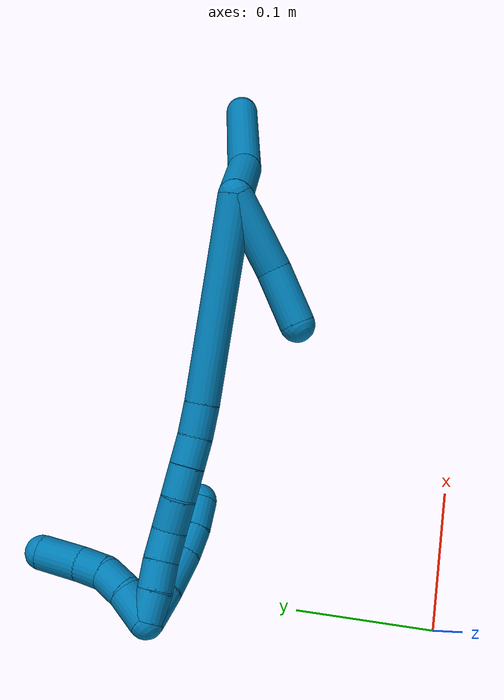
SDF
<sdf version="1.7">
 <world name="default">
  <model name="9">
   <static>0</static>
   <link name="9">
    <collision name="collision-cylinder-e_1_2_8">
     <pose>-0.011728 -0.013944 -0.019216 2.51385 -0.458809 -1.24724</pose>
     <geometry><cylinder><radius>0.0125</radius><length>0.052961</length></cylinder></geometry>
     <surface>
      <friction><ode><mu>1.16</mu><mu2>1.16</mu2><slip1>0</slip1><slip2>0</slip2></ode></friction>
      <contact><ode><kp>1e+06</kp><kd>1</kd><max_vel>0</max_vel><min_depth>0.001</min_depth></ode></contact>
     </surface>
    </collision>
    <visual name="visual-cylinder-e_1_2_8">
     <pose>-0.011728 -0.013944 -0.019216 2.51385 -0.458809 -1.24724</pose>
     <geometry><cylinder><radius>0.0125</radius><length>0.052961</length></cylinder></geometry>
     <material><ambient>0 0.490196 0.709804 1</ambient></material>
    </visual>
    <collision name="collision-cylinder-e_2_8_6">
     <pose>-0.038577 -0.049199 -0.079314 2.66108 -0.316933 -1.15599</pose>
     <geometry><cylinder><radius>0.0125</radius><length>0.097039</length></cylinder></geometry>
     <surface>
      <friction><ode><mu>1.16</mu><mu2>1.16</mu2><slip1>0</slip1><slip2>0</slip2></ode></friction>
      <contact><ode><kp>1e+06</kp><kd>1</kd><max_vel>0</max_vel><min_depth>0.001</min_depth></ode></contact>
     </surface>
    </collision>
    <visual name="visual-cylinder-e_2_8_6">
     <pose>-0.038577 -0.049199 -0.079314 2.66108 -0.316933 -1.15599</pose>
     <geometry><cylinder><radius>0.0125</radius><length>0.097039</length></cylinder></geometry>
     <material><ambient>0 0.490196 0.709804 1</ambient></material>
    </visual>
    <collision name="collision-cylinder-e_1_2_9">
     <pose>-0.016898 -0.001059 0.023901 0.044258 -0.614944 -0.014056</pose>
     <geometry><cylinder><radius>0.0125</radius><length>0.058581</length></cylinder></geometry>
     <surface>
      <friction><ode><mu>1.16</mu><mu2>1.16</mu2><slip1>0</slip1><slip2>0</slip2></ode></friction>
      <contact><ode><kp>1e+06</kp><kd>1</kd><max_vel>0</max_vel><min_depth>0.001</min_depth></ode></contact>
     </surface>
    </collision>
    <visual name="visual-cylinder-e_1_2_9">
     <pose>-0.016898 -0.001059 0.023901 0.044258 -0.614944 -0.014056</pose>
     <geometry><cylinder><radius>0.0125</radius><length>0.058581</length></cylinder></geometry>
     <material><ambient>0 0.490196 0.709804 1</ambient></material>
    </visual>
    <collision name="collision-cylinder-e_2_9_5">
     <pose>-0.043263 -0.000579 0.066157 -0.083623 -0.474786 0.020244</pose>
     <geometry><cylinder><radius>0.0125</radius><length>0.041419</length></cylinder></geometry>
     <surface>
      <friction><ode><mu>1.16</mu><mu2>1.16</mu2><slip1>0</slip1><slip2>0</slip2></ode></friction>
      <contact><ode><kp>1e+06</kp><kd>1</kd><max_vel>0</max_vel><min_depth>0.001</min_depth></ode></contact>
     </surface>
    </collision>
    <visual name="visual-cylinder-e_2_9_5">
     <pose>-0.043263 -0.000579 0.066157 -0.083623 -0.474786 0.020244</pose>
     <geometry><cylinder><radius>0.0125</radius><length>0.041419</length></cylinder></geometry>
     <material><ambient>0 0.490196 0.709804 1</ambient></material>
    </visual>
    <collision name="collision-cylinder-e_1_2_10">
     <pose>-0.040399 0.041134 0.045332 -0.736894 -0.583362 0.230805</pose>
     <geometry><cylinder><radius>0.0125</radius><length>0.146685</length></cylinder></geometry>
     <surface>
      <friction><ode><mu>1.16</mu><mu2>1.16</mu2><slip1>0</slip1><slip2>0</slip2></ode></friction>
      <contact><ode><kp>1e+06</kp><kd>1</kd><max_vel>0</max_vel><min_depth>0.001</min_depth></ode></contact>
     </surface>
    </collision>
    <visual name="visual-cylinder-e_1_2_10">
     <pose>-0.040399 0.041134 0.045332 -0.736894 -0.583362 0.230805</pose>
     <geometry><cylinder><radius>0.0125</radius><length>0.146685</length></cylinder></geometry>
     <material><ambient>0 0.490196 0.709804 1</ambient></material>
    </visual>
    <collision name="collision-cylinder-e_2_10_11">
     <pose>-0.0868 0.089439 0.097915 -0.779755 -0.531882 0.222931</pose>
     <geometry><cylinder><radius>0.0125</radius><length>0.023666</length></cylinder></geometry>
     <surface>
      <friction><ode><mu>1.16</mu><mu2>1.16</mu2><slip1>0</slip1><slip2>0</slip2></ode></friction>
      <contact><ode><kp>1e+06</kp><kd>1</kd><max_vel>0</max_vel><min_depth>0.001</min_depth></ode></contact>
     </surface>
    </collision>
    <visual name="visual-cylinder-e_2_10_11">
     <pose>-0.0868 0.089439 0.097915 -0.779755 -0.531882 0.222931</pose>
     <geometry><cylinder><radius>0.0125</radius><length>0.023666</length></cylinder></geometry>
     <material><ambient>0 0.490196 0.709804 1</ambient></material>
    </visual>
    <collision name="collision-cylinder-e_3_11_12">
     <pose>-0.097335 0.103626 0.111547 -0.832838 -0.445962 0.199909</pose>
     <geometry><cylinder><radius>0.0125</radius><length>0.021024</length></cylinder></geometry>
     <surface>
      <friction><ode><mu>1.16</mu><mu2>1.16</mu2><slip1>0</slip1><slip2>0</slip2></ode></friction>
      <contact><ode><kp>1e+06</kp><kd>1</kd><max_vel>0</max_vel><min_depth>0.001</min_depth></ode></contact>
     </surface>
    </collision>
    <visual name="visual-cylinder-e_3_11_12">
     <pose>-0.097335 0.103626 0.111547 -0.832838 -0.445962 0.199909</pose>
     <geometry><cylinder><radius>0.0125</radius><length>0.021024</length></cylinder></geometry>
     <material><ambient>0 0.490196 0.709804 1</ambient></material>
    </visual>
    <collision name="collision-cylinder-e_4_12_13">
     <pose>-0.107176 0.118196 0.124717 -0.838644 -0.481485 0.218004</pose>
     <geometry><cylinder><radius>0.0125</radius><length>0.022917</length></cylinder></geometry>
     <surface>
      <friction><ode><mu>1.16</mu><mu2>1.16</mu2><slip1>0</slip1><slip2>0</slip2></ode></friction>
      <contact><ode><kp>1e+06</kp><kd>1</kd><max_vel>0</max_vel><min_depth>0.001</min_depth></ode></contact>
     </surface>
    </collision>
    <visual name="visual-cylinder-e_4_12_13">
     <pose>-0.107176 0.118196 0.124717 -0.838644 -0.481485 0.218004</pose>
     <geometry><cylinder><radius>0.0125</radius><length>0.022917</length></cylinder></geometry>
     <material><ambient>0 0.490196 0.709804 1</ambient></material>
    </visual>
    <collision name="collision-cylinder-e_5_13_14">
     <pose>-0.119133 0.133179 0.137597 -0.884053 -0.60547 0.293506</pose>
     <geometry><cylinder><radius>0.0125</radius><length>0.023369</length></cylinder></geometry>
     <surface>
      <friction><ode><mu>1.16</mu><mu2>1.16</mu2><slip1>0</slip1><slip2>0</slip2></ode></friction>
      <contact><ode><kp>1e+06</kp><kd>1</kd><max_vel>0</max_vel><min_depth>0.001</min_depth></ode></contact>
     </surface>
    </collision>
    <visual name="visual-cylinder-e_5_13_14">
     <pose>-0.119133 0.133179 0.137597 -0.884053 -0.60547 0.293506</pose>
     <geometry><cylinder><radius>0.0125</radius><length>0.023369</length></cylinder></geometry>
     <material><ambient>0 0.490196 0.709804 1</ambient></material>
    </visual>
    <collision name="collision-cylinder-e_6_14_15">
     <pose>-0.129382 0.147864 0.150639 -0.806817 -0.343988 0.148014</pose>
     <geometry><cylinder><radius>0.0125</radius><length>0.021344</length></cylinder></geometry>
     <surface>
      <friction><ode><mu>1.16</mu><mu2>1.16</mu2><slip1>0</slip1><slip2>0</slip2></ode></friction>
      <contact><ode><kp>1e+06</kp><kd>1</kd><max_vel>0</max_vel><min_depth>0.001</min_depth></ode></contact>
     </surface>
    </collision>
    <visual name="visual-cylinder-e_6_14_15">
     <pose>-0.129382 0.147864 0.150639 -0.806817 -0.343988 0.148014</pose>
     <geometry><cylinder><radius>0.0125</radius><length>0.021344</length></cylinder></geometry>
     <material><ambient>0 0.490196 0.709804 1</ambient></material>
    </visual>
    <collision name="collision-cylinder-e_7_15_16">
     <pose>-0.136276 0.161406 0.164738 -0.721438 -0.333208 0.1267</pose>
     <geometry><cylinder><radius>0.0125</radius><length>0.020149</length></cylinder></geometry>
     <surface>
      <friction><ode><mu>1.16</mu><mu2>1.16</mu2><slip1>0</slip1><slip2>0</slip2></ode></friction>
      <contact><ode><kp>1e+06</kp><kd>1</kd><max_vel>0</max_vel><min_depth>0.001</min_depth></ode></contact>
     </surface>
    </collision>
    <visual name="visual-cylinder-e_7_15_16">
     <pose>-0.136276 0.161406 0.164738 -0.721438 -0.333208 0.1267</pose>
     <geometry><cylinder><radius>0.0125</radius><length>0.020149</length></cylinder></geometry>
     <material><ambient>0 0.490196 0.709804 1</ambient></material>
    </visual>
    <collision name="collision-cylinder-e_8_16_1">
     <pose>-0.14333 0.174807 0.178513 -0.820792 -0.368923 0.16201</pose>
     <geometry><cylinder><radius>0.0125</radius><length>0.020845</length></cylinder></geometry>
     <surface>
      <friction><ode><mu>1.16</mu><mu2>1.16</mu2><slip1>0</slip1><slip2>0</slip2></ode></friction>
      <contact><ode><kp>1e+06</kp><kd>1</kd><max_vel>0</max_vel><min_depth>0.001</min_depth></ode></contact>
     </surface>
    </collision>
    <visual name="visual-cylinder-e_8_16_1">
     <pose>-0.14333 0.174807 0.178513 -0.820792 -0.368923 0.16201</pose>
     <geometry><cylinder><radius>0.0125</radius><length>0.020845</length></cylinder></geometry>
     <material><ambient>0 0.490196 0.709804 1</ambient></material>
    </visual>
    <collision name="collision-cylinder-e_1_1_17">
     <pose>-0.149119 0.171173 0.177771 2.17184 -0.154602 -0.291957</pose>
     <geometry><cylinder><radius>0.0125</radius><length>0.026376</length></cylinder></geometry>
     <surface>
      <friction><ode><mu>1.16</mu><mu2>1.16</mu2><slip1>0</slip1><slip2>0</slip2></ode></friction>
      <contact><ode><kp>1e+06</kp><kd>1</kd><max_vel>0</max_vel><min_depth>0.001</min_depth></ode></contact>
     </surface>
    </collision>
    <visual name="visual-cylinder-e_1_1_17">
     <pose>-0.149119 0.171173 0.177771 2.17184 -0.154602 -0.291957</pose>
     <geometry><cylinder><radius>0.0125</radius><length>0.026376</length></cylinder></geometry>
     <material><ambient>0 0.490196 0.709804 1</ambient></material>
    </visual>
    <collision name="collision-cylinder-e_2_17_18">
     <pose>-0.153858 0.148818 0.161153 2.24355 -0.180465 -0.371224</pose>
     <geometry><cylinder><radius>0.0125</radius><length>0.030175</length></cylinder></geometry>
     <surface>
      <friction><ode><mu>1.16</mu><mu2>1.16</mu2><slip1>0</slip1><slip2>0</slip2></ode></friction>
      <contact><ode><kp>1e+06</kp><kd>1</kd><max_vel>0</max_vel><min_depth>0.001</min_depth></ode></contact>
     </surface>
    </collision>
    <visual name="visual-cylinder-e_2_17_18">
     <pose>-0.153858 0.148818 0.161153 2.24355 -0.180465 -0.371224</pose>
     <geometry><cylinder><radius>0.0125</radius><length>0.030175</length></cylinder></geometry>
     <material><ambient>0 0.490196 0.709804 1</ambient></material>
    </visual>
    <collision name="collision-cylinder-e_3_18_19">
     <pose>-0.157217 0.129434 0.144798 2.3112 -0.061727 -0.139842</pose>
     <geometry><cylinder><radius>0.0125</radius><length>0.021107</length></cylinder></geometry>
     <surface>
      <friction><ode><mu>1.16</mu><mu2>1.16</mu2><slip1>0</slip1><slip2>0</slip2></ode></friction>
      <contact><ode><kp>1e+06</kp><kd>1</kd><max_vel>0</max_vel><min_depth>0.001</min_depth></ode></contact>
     </surface>
    </collision>
    <visual name="visual-cylinder-e_3_18_19">
     <pose>-0.157217 0.129434 0.144798 2.3112 -0.061727 -0.139842</pose>
     <geometry><cylinder><radius>0.0125</radius><length>0.021107</length></cylinder></geometry>
     <material><ambient>0 0.490196 0.709804 1</ambient></material>
    </visual>
    <collision name="collision-cylinder-e_4_19_4">
     <pose>-0.157431 0.114357 0.129248 2.42868 0.03917 0.10511</pose>
     <geometry><cylinder><radius>0.0125</radius><length>0.022342</length></cylinder></geometry>
     <surface>
      <friction><ode><mu>1.16</mu><mu2>1.16</mu2><slip1>0</slip1><slip2>0</slip2></ode></friction>
      <contact><ode><kp>1e+06</kp><kd>1</kd><max_vel>0</max_vel><min_depth>0.001</min_depth></ode></contact>
     </surface>
    </collision>
    <visual name="visual-cylinder-e_4_19_4">
     <pose>-0.157431 0.114357 0.129248 2.42868 0.03917 0.10511</pose>
     <geometry><cylinder><radius>0.0125</radius><length>0.022342</length></cylinder></geometry>
     <material><ambient>0 0.490196 0.709804 1</ambient></material>
    </visual>
    <collision name="collision-cylinder-e_1_1_20">
     <pose>-0.146484 0.183742 0.172566 -2.99772 0.047549 -0.63745</pose>
     <geometry><cylinder><radius>0.0125</radius><length>0.025439</length></cylinder></geometry>
     <surface>
      <friction><ode><mu>1.16</mu><mu2>1.16</mu2><slip1>0</slip1><slip2>0</slip2></ode></friction>
      <contact><ode><kp>1e+06</kp><kd>1</kd><max_vel>0</max_vel><min_depth>0.001</min_depth></ode></contact>
     </surface>
    </collision>
    <visual name="visual-cylinder-e_1_1_20">
     <pose>-0.146484 0.183742 0.172566 -2.99772 0.047549 -0.63745</pose>
     <geometry><cylinder><radius>0.0125</radius><length>0.025439</length></cylinder></geometry>
     <material><ambient>0 0.490196 0.709804 1</ambient></material>
    </visual>
    <collision name="collision-cylinder-e_2_20_21">
     <pose>-0.147474 0.188552 0.149679 -2.8595 -0.147459 0.959374</pose>
     <geometry><cylinder><radius>0.0125</radius><length>0.02171</length></cylinder></geometry>
     <surface>
      <friction><ode><mu>1.16</mu><mu2>1.16</mu2><slip1>0</slip1><slip2>0</slip2></ode></friction>
      <contact><ode><kp>1e+06</kp><kd>1</kd><max_vel>0</max_vel><min_depth>0.001</min_depth></ode></contact>
     </surface>
    </collision>
    <visual name="visual-cylinder-e_2_20_21">
     <pose>-0.147474 0.188552 0.149679 -2.8595 -0.147459 0.959374</pose>
     <geometry><cylinder><radius>0.0125</radius><length>0.02171</length></cylinder></geometry>
     <material><ambient>0 0.490196 0.709804 1</ambient></material>
    </visual>
    <collision name="collision-cylinder-e_3_21_22">
     <pose>-0.151223 0.197471 0.131091 -2.51983 -0.208548 0.629767</pose>
     <geometry><cylinder><radius>0.0125</radius><length>0.02081</length></cylinder></geometry>
     <surface>
      <friction><ode><mu>1.16</mu><mu2>1.16</mu2><slip1>0</slip1><slip2>0</slip2></ode></friction>
      <contact><ode><kp>1e+06</kp><kd>1</kd><max_vel>0</max_vel><min_depth>0.001</min_depth></ode></contact>
     </surface>
    </collision>
    <visual name="visual-cylinder-e_3_21_22">
     <pose>-0.151223 0.197471 0.131091 -2.51983 -0.208548 0.629767</pose>
     <geometry><cylinder><radius>0.0125</radius><length>0.02081</length></cylinder></geometry>
     <material><ambient>0 0.490196 0.709804 1</ambient></material>
    </visual>
    <collision name="collision-cylinder-e_4_22_3">
     <pose>-0.154913 0.213839 0.110762 -2.42786 -0.095999 0.256273</pose>
     <geometry><cylinder><radius>0.0125</radius><length>0.03204</length></cylinder></geometry>
     <surface>
      <friction><ode><mu>1.16</mu><mu2>1.16</mu2><slip1>0</slip1><slip2>0</slip2></ode></friction>
      <contact><ode><kp>1e+06</kp><kd>1</kd><max_vel>0</max_vel><min_depth>0.001</min_depth></ode></contact>
     </surface>
    </collision>
    <visual name="visual-cylinder-e_4_22_3">
     <pose>-0.154913 0.213839 0.110762 -2.42786 -0.095999 0.256273</pose>
     <geometry><cylinder><radius>0.0125</radius><length>0.03204</length></cylinder></geometry>
     <material><ambient>0 0.490196 0.709804 1</ambient></material>
    </visual>
    <collision name="collision-sphere-3">
     <pose>-0.156449 0.224279 0.098708 0 -0 0</pose>
     <geometry><sphere><radius>0.0125</radius></sphere></geometry>
     <surface>
      <friction><ode><mu>1.16</mu><mu2>1.16</mu2><slip1>0</slip1><slip2>0</slip2></ode></friction>
      <contact><ode><kp>1e+06</kp><kd>1</kd><max_vel>0</max_vel><min_depth>0.001</min_depth></ode></contact>
     </surface>
    </collision>
    <visual name="visual-sphere-3">
     <pose>-0.156449 0.224279 0.098708 0 -0 0</pose>
     <geometry><sphere><radius>0.0125</radius></sphere></geometry>
     <material><ambient>0 0.490196 0.709804 1</ambient></material>
    </visual>
    <collision name="collision-sphere-22">
     <pose>-0.153378 0.2034 0.122817 0 -0 0</pose>
     <geometry><sphere><radius>0.0125</radius></sphere></geometry>
     <surface>
      <friction><ode><mu>1.16</mu><mu2>1.16</mu2><slip1>0</slip1><slip2>0</slip2></ode></friction>
      <contact><ode><kp>1e+06</kp><kd>1</kd><max_vel>0</max_vel><min_depth>0.001</min_depth></ode></contact>
     </surface>
    </collision>
    <visual name="visual-sphere-22">
     <pose>-0.153378 0.2034 0.122817 0 -0 0</pose>
     <geometry><sphere><radius>0.0125</radius></sphere></geometry>
     <material><ambient>0 0.490196 0.709804 1</ambient></material>
    </visual>
    <collision name="collision-sphere-21">
     <pose>-0.149069 0.191541 0.139366 0 -0 0</pose>
     <geometry><sphere><radius>0.0125</radius></sphere></geometry>
     <surface>
      <friction><ode><mu>1.16</mu><mu2>1.16</mu2><slip1>0</slip1><slip2>0</slip2></ode></friction>
      <contact><ode><kp>1e+06</kp><kd>1</kd><max_vel>0</max_vel><min_depth>0.001</min_depth></ode></contact>
     </surface>
    </collision>
    <visual name="visual-sphere-21">
     <pose>-0.149069 0.191541 0.139366 0 -0 0</pose>
     <geometry><sphere><radius>0.0125</radius></sphere></geometry>
     <material><ambient>0 0.490196 0.709804 1</ambient></material>
    </visual>
    <collision name="collision-sphere-20">
     <pose>-0.145879 0.185564 0.159992 0 -0 0</pose>
     <geometry><sphere><radius>0.0125</radius></sphere></geometry>
     <surface>
      <friction><ode><mu>1.16</mu><mu2>1.16</mu2><slip1>0</slip1><slip2>0</slip2></ode></friction>
      <contact><ode><kp>1e+06</kp><kd>1</kd><max_vel>0</max_vel><min_depth>0.001</min_depth></ode></contact>
     </surface>
    </collision>
    <visual name="visual-sphere-20">
     <pose>-0.145879 0.185564 0.159992 0 -0 0</pose>
     <geometry><sphere><radius>0.0125</radius></sphere></geometry>
     <material><ambient>0 0.490196 0.709804 1</ambient></material>
    </visual>
    <collision name="collision-sphere-4">
     <pose>-0.156993 0.107057 0.120805 0 -0 0</pose>
     <geometry><sphere><radius>0.0125</radius></sphere></geometry>
     <surface>
      <friction><ode><mu>1.16</mu><mu2>1.16</mu2><slip1>0</slip1><slip2>0</slip2></ode></friction>
      <contact><ode><kp>1e+06</kp><kd>1</kd><max_vel>0</max_vel><min_depth>0.001</min_depth></ode></contact>
     </surface>
    </collision>
    <visual name="visual-sphere-4">
     <pose>-0.156993 0.107057 0.120805 0 -0 0</pose>
     <geometry><sphere><radius>0.0125</radius></sphere></geometry>
     <material><ambient>0 0.490196 0.709804 1</ambient></material>
    </visual>
    <collision name="collision-sphere-10">
     <pose>-0.080799 0.082269 0.090663 0 -0 0</pose>
     <geometry><sphere><radius>0.0125</radius></sphere></geometry>
     <surface>
      <friction><ode><mu>1.16</mu><mu2>1.16</mu2><slip1>0</slip1><slip2>0</slip2></ode></friction>
      <contact><ode><kp>1e+06</kp><kd>1</kd><max_vel>0</max_vel><min_depth>0.001</min_depth></ode></contact>
     </surface>
    </collision>
    <visual name="visual-sphere-10">
     <pose>-0.080799 0.082269 0.090663 0 -0 0</pose>
     <geometry><sphere><radius>0.0125</radius></sphere></geometry>
     <material><ambient>0 0.490196 0.709804 1</ambient></material>
    </visual>
    <collision name="collision-sphere-5">
     <pose>-0.052731 0.00096 0.084511 0 -0 0</pose>
     <geometry><sphere><radius>0.0125</radius></sphere></geometry>
     <surface>
      <friction><ode><mu>1.16</mu><mu2>1.16</mu2><slip1>0</slip1><slip2>0</slip2></ode></friction>
      <contact><ode><kp>1e+06</kp><kd>1</kd><max_vel>0</max_vel><min_depth>0.001</min_depth></ode></contact>
     </surface>
    </collision>
    <visual name="visual-sphere-5">
     <pose>-0.052731 0.00096 0.084511 0 -0 0</pose>
     <geometry><sphere><radius>0.0125</radius></sphere></geometry>
     <material><ambient>0 0.490196 0.709804 1</ambient></material>
    </visual>
    <collision name="collision-sphere-6">
     <pose>-0.053698 -0.070509 -0.120196 0 -0 0</pose>
     <geometry><sphere><radius>0.0125</radius></sphere></geometry>
     <surface>
      <friction><ode><mu>1.16</mu><mu2>1.16</mu2><slip1>0</slip1><slip2>0</slip2></ode></friction>
      <contact><ode><kp>1e+06</kp><kd>1</kd><max_vel>0</max_vel><min_depth>0.001</min_depth></ode></contact>
     </surface>
    </collision>
    <visual name="visual-sphere-6">
     <pose>-0.053698 -0.070509 -0.120196 0 -0 0</pose>
     <geometry><sphere><radius>0.0125</radius></sphere></geometry>
     <material><ambient>0 0.490196 0.709804 1</ambient></material>
    </visual>
    <collision name="collision-sphere-9">
     <pose>-0.033796 -0.002117 0.047802 0 -0 0</pose>
     <geometry><sphere><radius>0.0125</radius></sphere></geometry>
     <surface>
      <friction><ode><mu>1.16</mu><mu2>1.16</mu2><slip1>0</slip1><slip2>0</slip2></ode></friction>
      <contact><ode><kp>1e+06</kp><kd>1</kd><max_vel>0</max_vel><min_depth>0.001</min_depth></ode></contact>
     </surface>
    </collision>
    <visual name="visual-sphere-9">
     <pose>-0.033796 -0.002117 0.047802 0 -0 0</pose>
     <geometry><sphere><radius>0.0125</radius></sphere></geometry>
     <material><ambient>0 0.490196 0.709804 1</ambient></material>
    </visual>
    <collision name="collision-sphere-2">
     <geometry><sphere><radius>0.0125</radius></sphere></geometry>
     <surface>
      <friction><ode><mu>1.16</mu><mu2>1.16</mu2><slip1>0</slip1><slip2>0</slip2></ode></friction>
      <contact><ode><kp>1e+06</kp><kd>1</kd><max_vel>0</max_vel><min_depth>0.001</min_depth></ode></contact>
     </surface>
    </collision>
    <visual name="visual-sphere-2">
     <geometry><sphere><radius>0.0125</radius></sphere></geometry>
     <material><ambient>0 0.490196 0.709804 1</ambient></material>
    </visual>
    <collision name="collision-sphere-19">
     <pose>-0.157868 0.121658 0.137692 0 -0 0</pose>
     <geometry><sphere><radius>0.0125</radius></sphere></geometry>
     <surface>
      <friction><ode><mu>1.16</mu><mu2>1.16</mu2><slip1>0</slip1><slip2>0</slip2></ode></friction>
      <contact><ode><kp>1e+06</kp><kd>1</kd><max_vel>0</max_vel><min_depth>0.001</min_depth></ode></contact>
     </surface>
    </collision>
    <visual name="visual-sphere-19">
     <pose>-0.157868 0.121658 0.137692 0 -0 0</pose>
     <geometry><sphere><radius>0.0125</radius></sphere></geometry>
     <material><ambient>0 0.490196 0.709804 1</ambient></material>
    </visual>
    <collision name="collision-sphere-8">
     <pose>-0.023455 -0.027888 -0.038431 0 -0 0</pose>
     <geometry><sphere><radius>0.0125</radius></sphere></geometry>
     <surface>
      <friction><ode><mu>1.16</mu><mu2>1.16</mu2><slip1>0</slip1><slip2>0</slip2></ode></friction>
      <contact><ode><kp>1e+06</kp><kd>1</kd><max_vel>0</max_vel><min_depth>0.001</min_depth></ode></contact>
     </surface>
    </collision>
    <visual name="visual-sphere-8">
     <pose>-0.023455 -0.027888 -0.038431 0 -0 0</pose>
     <geometry><sphere><radius>0.0125</radius></sphere></geometry>
     <material><ambient>0 0.490196 0.709804 1</ambient></material>
    </visual>
    <collision name="collision-sphere-11">
     <pose>-0.092801 0.09661 0.105167 0 -0 0</pose>
     <geometry><sphere><radius>0.0125</radius></sphere></geometry>
     <surface>
      <friction><ode><mu>1.16</mu><mu2>1.16</mu2><slip1>0</slip1><slip2>0</slip2></ode></friction>
      <contact><ode><kp>1e+06</kp><kd>1</kd><max_vel>0</max_vel><min_depth>0.001</min_depth></ode></contact>
     </surface>
    </collision>
    <visual name="visual-sphere-11">
     <pose>-0.092801 0.09661 0.105167 0 -0 0</pose>
     <geometry><sphere><radius>0.0125</radius></sphere></geometry>
     <material><ambient>0 0.490196 0.709804 1</ambient></material>
    </visual>
    <collision name="collision-sphere-12">
     <pose>-0.101869 0.110643 0.117928 0 -0 0</pose>
     <geometry><sphere><radius>0.0125</radius></sphere></geometry>
     <surface>
      <friction><ode><mu>1.16</mu><mu2>1.16</mu2><slip1>0</slip1><slip2>0</slip2></ode></friction>
      <contact><ode><kp>1e+06</kp><kd>1</kd><max_vel>0</max_vel><min_depth>0.001</min_depth></ode></contact>
     </surface>
    </collision>
    <visual name="visual-sphere-12">
     <pose>-0.101869 0.110643 0.117928 0 -0 0</pose>
     <geometry><sphere><radius>0.0125</radius></sphere></geometry>
     <material><ambient>0 0.490196 0.709804 1</ambient></material>
    </visual>
    <collision name="collision-sphere-13">
     <pose>-0.112482 0.12575 0.131506 0 -0 0</pose>
     <geometry><sphere><radius>0.0125</radius></sphere></geometry>
     <surface>
      <friction><ode><mu>1.16</mu><mu2>1.16</mu2><slip1>0</slip1><slip2>0</slip2></ode></friction>
      <contact><ode><kp>1e+06</kp><kd>1</kd><max_vel>0</max_vel><min_depth>0.001</min_depth></ode></contact>
     </surface>
    </collision>
    <visual name="visual-sphere-13">
     <pose>-0.112482 0.12575 0.131506 0 -0 0</pose>
     <geometry><sphere><radius>0.0125</radius></sphere></geometry>
     <material><ambient>0 0.490196 0.709804 1</ambient></material>
    </visual>
    <collision name="collision-sphere-14">
     <pose>-0.125783 0.140609 0.143689 0 -0 0</pose>
     <geometry><sphere><radius>0.0125</radius></sphere></geometry>
     <surface>
      <friction><ode><mu>1.16</mu><mu2>1.16</mu2><slip1>0</slip1><slip2>0</slip2></ode></friction>
      <contact><ode><kp>1e+06</kp><kd>1</kd><max_vel>0</max_vel><min_depth>0.001</min_depth></ode></contact>
     </surface>
    </collision>
    <visual name="visual-sphere-14">
     <pose>-0.125783 0.140609 0.143689 0 -0 0</pose>
     <geometry><sphere><radius>0.0125</radius></sphere></geometry>
     <material><ambient>0 0.490196 0.709804 1</ambient></material>
    </visual>
    <collision name="collision-sphere-15">
     <pose>-0.132981 0.155118 0.157589 0 -0 0</pose>
     <geometry><sphere><radius>0.0125</radius></sphere></geometry>
     <surface>
      <friction><ode><mu>1.16</mu><mu2>1.16</mu2><slip1>0</slip1><slip2>0</slip2></ode></friction>
      <contact><ode><kp>1e+06</kp><kd>1</kd><max_vel>0</max_vel><min_depth>0.001</min_depth></ode></contact>
     </surface>
    </collision>
    <visual name="visual-sphere-15">
     <pose>-0.132981 0.155118 0.157589 0 -0 0</pose>
     <geometry><sphere><radius>0.0125</radius></sphere></geometry>
     <material><ambient>0 0.490196 0.709804 1</ambient></material>
    </visual>
    <collision name="collision-sphere-16">
     <pose>-0.139571 0.167694 0.171887 0 -0 0</pose>
     <geometry><sphere><radius>0.0125</radius></sphere></geometry>
     <surface>
      <friction><ode><mu>1.16</mu><mu2>1.16</mu2><slip1>0</slip1><slip2>0</slip2></ode></friction>
      <contact><ode><kp>1e+06</kp><kd>1</kd><max_vel>0</max_vel><min_depth>0.001</min_depth></ode></contact>
     </surface>
    </collision>
    <visual name="visual-sphere-16">
     <pose>-0.139571 0.167694 0.171887 0 -0 0</pose>
     <geometry><sphere><radius>0.0125</radius></sphere></geometry>
     <material><ambient>0 0.490196 0.709804 1</ambient></material>
    </visual>
    <collision name="collision-sphere-1">
     <pose>-0.147088 0.18192 0.18514 0 -0 0</pose>
     <geometry><sphere><radius>0.0125</radius></sphere></geometry>
     <surface>
      <friction><ode><mu>1.16</mu><mu2>1.16</mu2><slip1>0</slip1><slip2>0</slip2></ode></friction>
      <contact><ode><kp>1e+06</kp><kd>1</kd><max_vel>0</max_vel><min_depth>0.001</min_depth></ode></contact>
     </surface>
    </collision>
    <visual name="visual-sphere-1">
     <pose>-0.147088 0.18192 0.18514 0 -0 0</pose>
     <geometry><sphere><radius>0.0125</radius></sphere></geometry>
     <material><ambient>0 0.490196 0.709804 1</ambient></material>
    </visual>
    <collision name="collision-sphere-18">
     <pose>-0.156566 0.137209 0.151904 0 -0 0</pose>
     <geometry><sphere><radius>0.0125</radius></sphere></geometry>
     <surface>
      <friction><ode><mu>1.16</mu><mu2>1.16</mu2><slip1>0</slip1><slip2>0</slip2></ode></friction>
      <contact><ode><kp>1e+06</kp><kd>1</kd><max_vel>0</max_vel><min_depth>0.001</min_depth></ode></contact>
     </surface>
    </collision>
    <visual name="visual-sphere-18">
     <pose>-0.156566 0.137209 0.151904 0 -0 0</pose>
     <geometry><sphere><radius>0.0125</radius></sphere></geometry>
     <material><ambient>0 0.490196 0.709804 1</ambient></material>
    </visual>
    <collision name="collision-sphere-17">
     <pose>-0.15115 0.160426 0.170402 0 -0 0</pose>
     <geometry><sphere><radius>0.0125</radius></sphere></geometry>
     <surface>
      <friction><ode><mu>1.16</mu><mu2>1.16</mu2><slip1>0</slip1><slip2>0</slip2></ode></friction>
      <contact><ode><kp>1e+06</kp><kd>1</kd><max_vel>0</max_vel><min_depth>0.001</min_depth></ode></contact>
     </surface>
    </collision>
    <visual name="visual-sphere-17">
     <pose>-0.15115 0.160426 0.170402 0 -0 0</pose>
     <geometry><sphere><radius>0.0125</radius></sphere></geometry>
     <material><ambient>0 0.490196 0.709804 1</ambient></material>
    </visual>
    <inertial>
     <pose>-0.081811 0.072833 0.069973 0 -0 0</pose>
     <mass>0.75</mass>
     <inertia>
      <ixx>0.000253</ixx>
      <ixy>0</ixy>
      <ixz>0</ixz>
      <iyy>0.000199</iyy>
      <iyz>0</iyz>
      <izz>8.8e-05</izz>
     </inertia>
    </inertial>
   </link>
   <pose>0.268289 0.183498 0.113448 0.379779 -1.25027 0.285796</pose>
  </model>
 </world>
</sdf>
